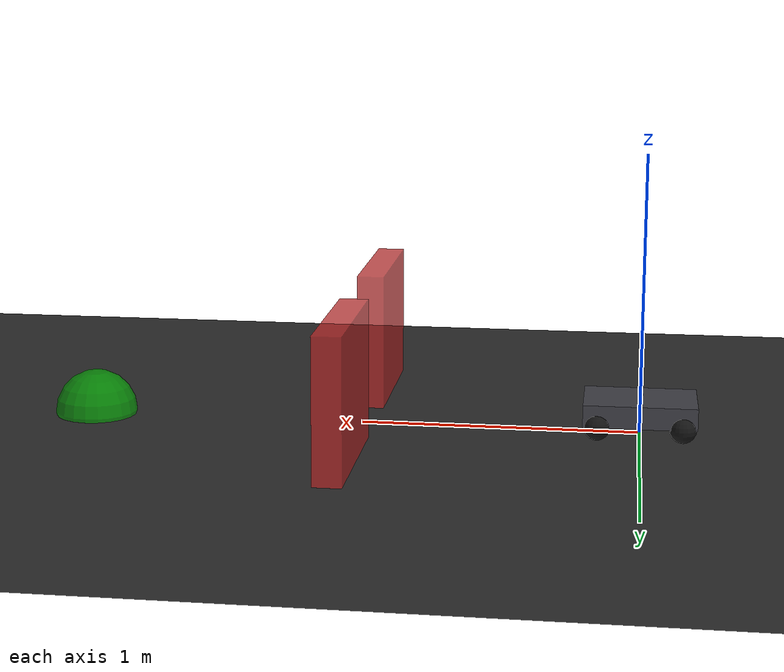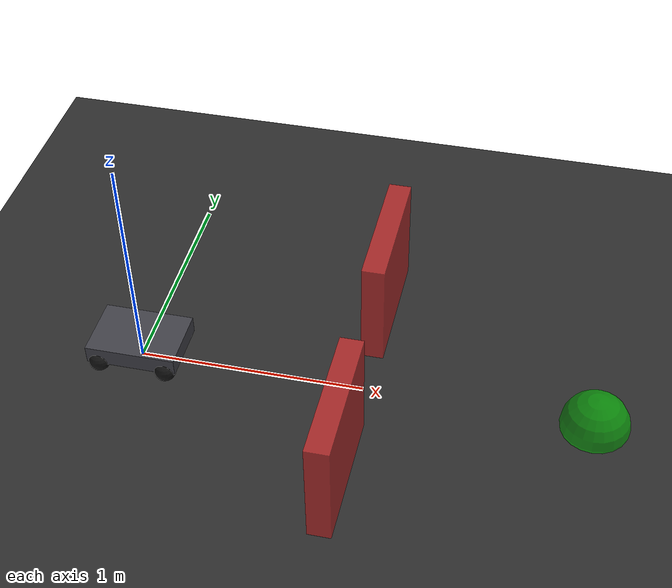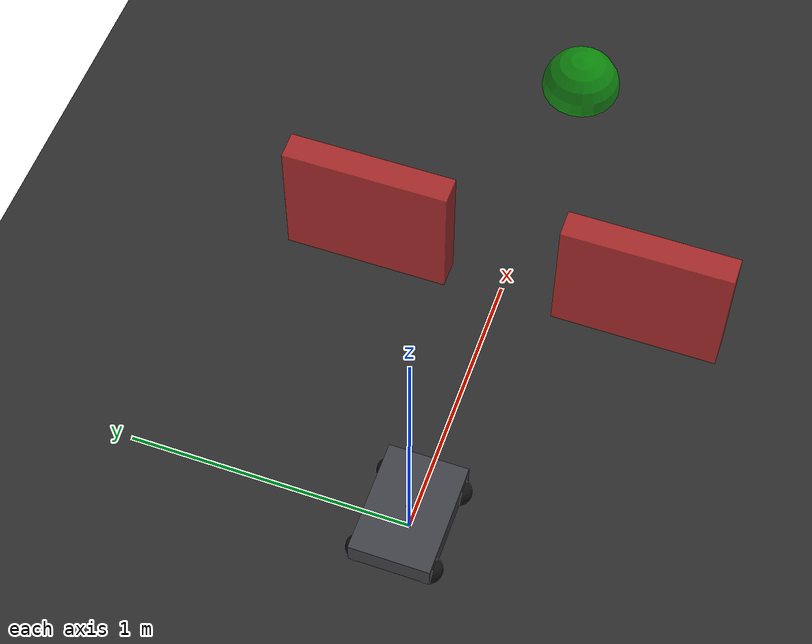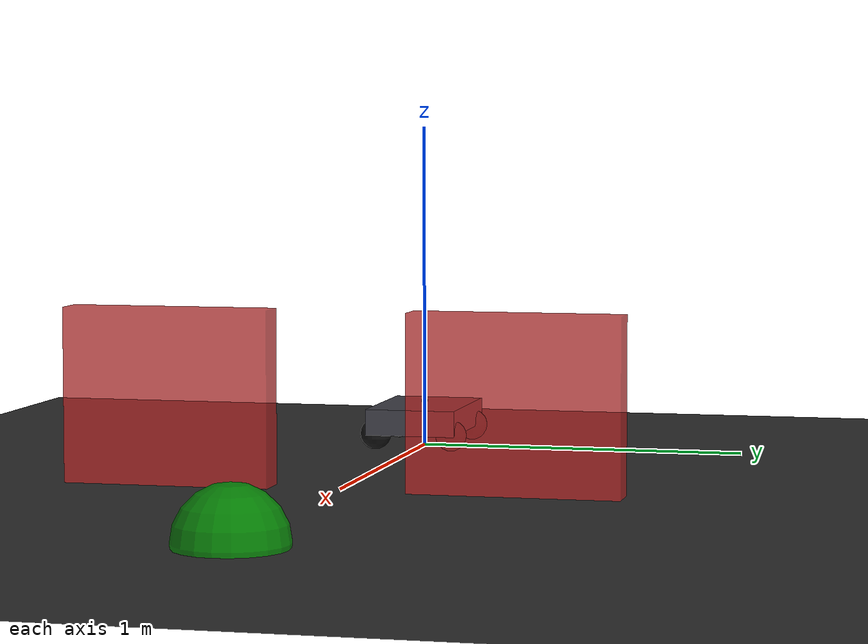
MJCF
<mujoco model="genbot_ackermann">
  <!--
    GenBot 阿克曼四轮底盘
    前轮：sphere（转向），通过 hinge joint 绕 Z 轴转动
    后轮：sphere（驱动），通过 motor 直接驱动
    使用 sphere 确保接触计算稳定可靠
  -->
  <compiler angle="radian" coordinate="local" meshdir="none"/>

  <option timestep="0.005" integrator="Euler">
    <flag gravity="enable" contact="enable"/>
  </option>

  <size nstack="300000" nconmax="400"/>

  <asset>
    <texture name="grid" type="2d" builtin="checker" rgb1=".15 .15 .15" rgb2=".2 .2 .2" width="512" height="512"/>
    <material name="ground" texture="grid" texrepeat="4 4"/>
    <material name="chassis" rgba="0.25 0.25 0.28 1.0"/>
    <material name="wheel" rgba="0.08 0.08 0.08 1.0"/>
    <material name="target" rgba="0.0 0.8 0.0 0.6"/>
    <material name="obstacle" rgba="0.8 0.2 0.2 0.8"/>
  </asset>

  <default>
    <geom friction="1.5 0.1 0.01" condim="3" solref="0.02 1.0" solimp="0.9 0.95 0.001"/>
    <joint damping="0.05" frictionloss="0.01"/>
  </default>

  <worldbody>
    <light name="light0" pos="0 0 3" dir="0 0 -1" directional="true" castshadow="true"/>
    <geom name="floor" type="plane" size="5 5 0.1" material="ground"/>

    <!-- ==================== 底盘 ==================== -->
    <body name="chassis" pos="0 0 0.09">
      <!-- 6自由度：x, y, z + 四元数 -->
      <freejoint/>

      <!-- 底盘几何体 -->
      <geom name="chassis_geom" type="box" size="0.200 0.140 0.040" material="chassis" mass="4.0"/>
      <inertial pos="0 0 0" mass="4.0" diaginertia="0.02 0.03 0.04"/>

      <!-- ===== 前左轮 ===== -->
      <body name="fl_wheel" pos="0.150 0.120 -0.040">
        <!-- 转向关节：绕 Z 轴旋转 -->
        <joint name="fl_steer" type="hinge" axis="0 0 1" limited="true" range="-0.6 0.6"/>
        <!-- 球体做轮子，半径为0.048m -->
        <geom name="fl_wheel_geom" type="sphere" size="0.048" mass="0.3" material="wheel"/>
      </body>

      <!-- ===== 前右轮 ===== -->
      <body name="fr_wheel" pos="0.150 -0.120 -0.040">
        <joint name="fr_steer" type="hinge" axis="0 0 1" limited="true" range="-0.6 0.6"/>
        <geom name="fr_wheel_geom" type="sphere" size="0.048" mass="0.3" material="wheel"/>
      </body>

      <!-- ===== 后左轮 ===== -->
      <body name="rl_wheel" pos="-0.150 0.120 -0.040">
        <joint name="rl_joint" type="hinge" axis="0 1 0"/>
        <geom name="rl_wheel_geom" type="sphere" size="0.048" mass="0.5" material="wheel"/>
      </body>

      <!-- ===== 后右轮 ===== -->
      <body name="rr_wheel" pos="-0.150 -0.120 -0.040">
        <joint name="rr_joint" type="hinge" axis="0 1 0"/>
        <geom name="rr_wheel_geom" type="sphere" size="0.048" mass="0.5" material="wheel"/>
      </body>

      <!-- LiDAR 位置 -->
      <site name="lidar_site" pos="0 0 0.050" size="0.01 0.01 0.01"/>
    </body>

    <!-- ==================== 目标点 ==================== -->
    <body name="target" pos="2.0 0 0.01">
      <geom name="target_geom" type="sphere" size="0.15" material="target"/>
    </body>

    <!-- ==================== 障碍物（可添加） ==================== -->
    <body name="wall1" pos="1.0 0.5 0.25">
      <geom name="wall1_geom" type="box" size="0.05 0.3 0.25" material="obstacle"/>
    </body>
    <body name="wall2" pos="1.0 -0.5 0.25">
      <geom name="wall2_geom" type="box" size="0.05 0.3 0.25" material="obstacle"/>
    </body>
  </worldbody>

  <!-- ==================== 执行器 ==================== -->
  <actuator>
    <!-- 后轮驱动 -->
    <motor name="left_motor" joint="rl_joint" ctrlrange="-5.0 5.0" ctrllimited="true"/>
    <motor name="right_motor" joint="rr_joint" ctrlrange="-5.0 5.0" ctrllimited="true"/>
    <!-- 前轮转向 -->
    <position name="fl_steer_act" joint="fl_steer" kp="5.0" ctrlrange="-0.6 0.6" ctrllimited="true"/>
    <position name="fr_steer_act" joint="fr_steer" kp="5.0" ctrlrange="-0.6 0.6" ctrllimited="true"/>
  </actuator>
</mujoco>
